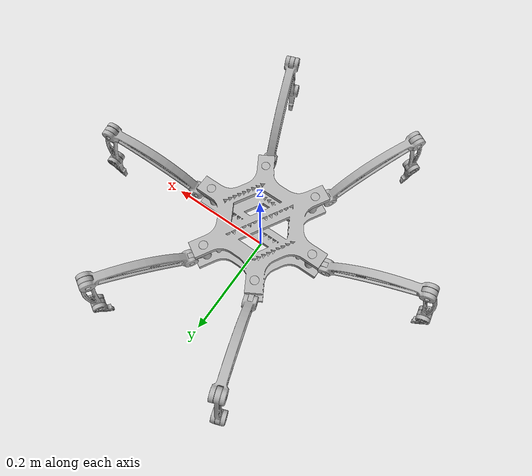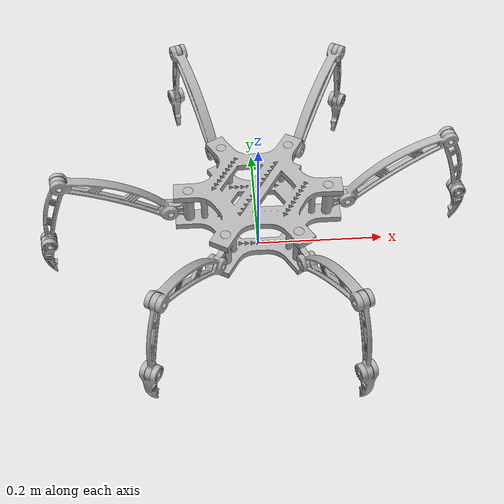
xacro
<?xml version="1.0" ?>
<robot name="spiderbot" xmlns:xacro="http://www.ros.org/wiki/xacro">

<xacro:include filename="$(find spiderbot_description)/urdf/materials.xacro" />
<xacro:include filename="$(find spiderbot_description)/urdf/spiderbot.trans" />
<xacro:include filename="$(find spiderbot_description)/urdf/spiderbot.gazebo" />
<link name="base_link">
  <inertial>
    <origin rpy="0 0 0" xyz="2.6809392292955512e-05 -4.643522955654412e-05 0.0923699999999998"/>
    <mass value="3.423316766776228"/>
    <inertia ixx="0.013718" ixy="-0.000137" ixz="8e-06" iyy="0.013876" iyz="5e-06" izz="0.022087"/>
  </inertial>
  <visual>
    <origin rpy="0 0 0" xyz="0 0 0"/>
    <geometry>
      <mesh filename="package://spiderbot_description/meshes/base_link.stl" scale="0.001 0.001 0.001"/>
    </geometry>
    <material name="silver"/>
  </visual>
  <collision>
    <origin rpy="0 0 0" xyz="0 0 0"/>
    <geometry>
      <mesh filename="package://spiderbot_description/meshes/base_link.stl" scale="0.001 0.001 0.001"/>
    </geometry>
  </collision>
</link>

<link name="L3_1">
  <inertial>
    <origin rpy="0 0 0" xyz="-0.005130608888203325 0.00023349383962689707 -0.016813261652497954"/>
    <mass value="0.08507758327600112"/>
    <inertia ixx="3.5e-05" ixy="0.0" ixz="-1e-06" iyy="3.5e-05" iyz="-1e-06" izz="6e-06"/>
  </inertial>
  <visual>
    <origin rpy="0 0 0" xyz="0.157328 0.281559 -0.067835"/>
    <geometry>
      <mesh filename="package://spiderbot_description/meshes/L3_1.stl" scale="0.001 0.001 0.001"/>
    </geometry>
    <material name="silver"/>
  </visual>
  <collision>
    <origin rpy="0 0 0" xyz="0.157328 0.281559 -0.067835"/>
    <geometry>
      <mesh filename="package://spiderbot_description/meshes/L3_1.stl" scale="0.001 0.001 0.001"/>
    </geometry>
  </collision>
</link>

<link name="L2_1">
  <inertial>
    <origin rpy="0 0 0" xyz="-0.01212597182277686 -0.01205985316858843 -0.056071782056924424"/>
    <mass value="0.10556026695885269"/>
    <inertia ixx="0.000244" ixy="-9e-06" ixz="-3e-05" iyy="0.000234" iyz="-5.2e-05" izz="2.2e-05"/>
  </inertial>
  <visual>
    <origin rpy="0 0 0" xyz="0.141772 0.254557 -0.183719"/>
    <geometry>
      <mesh filename="package://spiderbot_description/meshes/L2_1.stl" scale="0.001 0.001 0.001"/>
    </geometry>
    <material name="silver"/>
  </visual>
  <collision>
    <origin rpy="0 0 0" xyz="0.141772 0.254557 -0.183719"/>
    <geometry>
      <mesh filename="package://spiderbot_description/meshes/L2_1.stl" scale="0.001 0.001 0.001"/>
    </geometry>
  </collision>
</link>

<link name="L1_1">
  <inertial>
    <origin rpy="0 0 0" xyz="-0.040901984797283464 -0.0616602746095367 0.048404022481763107"/>
    <mass value="0.29510328391513424"/>
    <inertia ixx="0.00103" ixy="-0.000391" ixz="0.000264" iyy="0.000578" iyz="0.000458" izz="0.000923"/>
  </inertial>
  <visual>
    <origin rpy="0 0 0" xyz="0.064223 0.120238 -0.09237"/>
    <geometry>
      <mesh filename="package://spiderbot_description/meshes/L1_1.stl" scale="0.001 0.001 0.001"/>
    </geometry>
    <material name="silver"/>
  </visual>
  <collision>
    <origin rpy="0 0 0" xyz="0.064223 0.120238 -0.09237"/>
    <geometry>
      <mesh filename="package://spiderbot_description/meshes/L1_1.stl" scale="0.001 0.001 0.001"/>
    </geometry>
  </collision>
</link>

<link name="Hinge_1">
  <inertial>
    <origin rpy="0 0 0" xyz="-0.003170256289144309 -0.005491189080670353 -0.03379999999999492"/>
    <mass value="0.13570338096793705"/>
    <inertia ixx="5.6e-05" ixy="-8e-06" ixz="0.0" iyy="4.7e-05" iyz="0.0" izz="2.3e-05"/>
  </inertial>
  <visual>
    <origin rpy="0 0 0" xyz="0.053121 0.092008 -0.12617"/>
    <geometry>
      <mesh filename="package://spiderbot_description/meshes/Hinge_1.stl" scale="0.001 0.001 0.001"/>
    </geometry>
    <material name="silver"/>
  </visual>
  <collision>
    <origin rpy="0 0 0" xyz="0.053121 0.092008 -0.12617"/>
    <geometry>
      <mesh filename="package://spiderbot_description/meshes/Hinge_1.stl" scale="0.001 0.001 0.001"/>
    </geometry>
  </collision>
</link>

<link name="L3_2">
  <inertial>
    <origin rpy="0 0 0" xyz="-0.003440144629059616 -0.003767504367178931 -0.01681326165251376"/>
    <mass value="0.08507758327600112"/>
    <inertia ixx="3.5e-05" ixy="-0.0" ixz="1e-06" iyy="3.5e-05" iyz="-2e-06" izz="6e-06"/>
  </inertial>
  <visual>
    <origin rpy="0 0 0" xyz="-0.131314 0.293686 -0.067835"/>
    <geometry>
      <mesh filename="package://spiderbot_description/meshes/L3_2.stl" scale="0.001 0.001 0.001"/>
    </geometry>
    <material name="silver"/>
  </visual>
  <collision>
    <origin rpy="0 0 0" xyz="-0.131314 0.293686 -0.067835"/>
    <geometry>
      <mesh filename="package://spiderbot_description/meshes/L3_2.stl" scale="0.001 0.001 0.001"/>
    </geometry>
  </collision>
</link>

<link name="L2_2">
  <inertial>
    <origin rpy="0 0 0" xyz="0.001444614118033677 -0.017040204575403672 -0.05607178205692495"/>
    <mass value="0.10556026695885269"/>
    <inertia ixx="0.000247" ixy="7e-06" ixz="2.1e-05" iyy="0.000231" iyz="-5.7e-05" izz="2.2e-05"/>
  </inertial>
  <visual>
    <origin rpy="0 0 0" xyz="-0.120656 0.264404 -0.183719"/>
    <geometry>
      <mesh filename="package://spiderbot_description/meshes/L2_2.stl" scale="0.001 0.001 0.001"/>
    </geometry>
    <material name="silver"/>
  </visual>
  <collision>
    <origin rpy="0 0 0" xyz="-0.120656 0.264404 -0.183719"/>
    <geometry>
      <mesh filename="package://spiderbot_description/meshes/L2_2.stl" scale="0.001 0.001 0.001"/>
    </geometry>
  </collision>
</link>

<link name="L1_2">
  <inertial>
    <origin rpy="0 0 0" xyz="0.02094308953132311 -0.07096687628219654 0.048404022481762746"/>
    <mass value="0.29510328391513424"/>
    <inertia ixx="0.00115" ixy="0.00029" ixz="-0.000181" iyy="0.000458" iyz="0.000497" izz="0.000923"/>
  </inertial>
  <visual>
    <origin rpy="0 0 0" xyz="-0.06761 0.118659 -0.09237"/>
    <geometry>
      <mesh filename="package://spiderbot_description/meshes/L1_2.stl" scale="0.001 0.001 0.001"/>
    </geometry>
    <material name="silver"/>
  </visual>
  <collision>
    <origin rpy="0 0 0" xyz="-0.06761 0.118659 -0.09237"/>
    <geometry>
      <mesh filename="package://spiderbot_description/meshes/L1_2.stl" scale="0.001 0.001 0.001"/>
    </geometry>
  </collision>
</link>

<link name="Hinge_2">
  <inertial>
    <origin rpy="0 0 0" xyz="0.0021683546774397405 -0.005958383474925971 -0.033799999999994904"/>
    <mass value="0.13570338096793705"/>
    <inertia ixx="5.9e-05" ixy="6e-06" ixz="-0.0" iyy="4.4e-05" iyz="0.0" izz="2.3e-05"/>
  </inertial>
  <visual>
    <origin rpy="0 0 0" xyz="-0.053121 0.092008 -0.12617"/>
    <geometry>
      <mesh filename="package://spiderbot_description/meshes/Hinge_2.stl" scale="0.001 0.001 0.001"/>
    </geometry>
    <material name="silver"/>
  </visual>
  <collision>
    <origin rpy="0 0 0" xyz="-0.053121 0.092008 -0.12617"/>
    <geometry>
      <mesh filename="package://spiderbot_description/meshes/Hinge_2.stl" scale="0.001 0.001 0.001"/>
    </geometry>
  </collision>
</link>

<link name="L3_3">
  <inertial>
    <origin rpy="0 0 0" xyz="0.0031127057224516474 -0.004042714858644769 -0.016813261652514067"/>
    <mass value="0.08507758327600112"/>
    <inertia ixx="3.5e-05" ixy="0.0" ixz="2e-06" iyy="3.5e-05" iyz="0.0" izz="6e-06"/>
  </inertial>
  <visual>
    <origin rpy="0 0 0" xyz="-0.318434 -0.041985 -0.067835"/>
    <geometry>
      <mesh filename="package://spiderbot_description/meshes/L3_3.stl" scale="0.001 0.001 0.001"/>
    </geometry>
    <material name="silver"/>
  </visual>
  <collision>
    <origin rpy="0 0 0" xyz="-0.318434 -0.041985 -0.067835"/>
    <geometry>
      <mesh filename="package://spiderbot_description/meshes/L3_3.stl" scale="0.001 0.001 0.001"/>
    </geometry>
  </collision>
</link>

<link name="L2_3">
  <inertial>
    <origin rpy="0 0 0" xyz="0.017032110344417484 -0.0015372618699516435 -0.056071782056924785"/>
    <mass value="0.10556026695885269"/>
    <inertia ixx="0.000229" ixy="-4e-06" ixz="6e-05" iyy="0.000249" iyz="1.1e-05" izz="2.2e-05"/>
  </inertial>
  <visual>
    <origin rpy="0 0 0" xyz="-0.287746 -0.036574 -0.183719"/>
    <geometry>
      <mesh filename="package://spiderbot_description/meshes/L2_3.stl" scale="0.001 0.001 0.001"/>
    </geometry>
    <material name="silver"/>
  </visual>
  <collision>
    <origin rpy="0 0 0" xyz="-0.287746 -0.036574 -0.183719"/>
    <geometry>
      <mesh filename="package://spiderbot_description/meshes/L2_3.stl" scale="0.001 0.001 0.001"/>
    </geometry>
  </collision>
</link>

<link name="L1_3">
  <inertial>
    <origin rpy="0 0 0" xyz="0.07352524226292798 0.00830196120722726 0.04840402248176283"/>
    <mass value="0.29510328391513424"/>
    <inertia ixx="0.000379" ixy="-0.000154" ixz="-0.000521" iyy="0.001228" iyz="-9.2e-05" izz="0.000923"/>
  </inertial>
  <visual>
    <origin rpy="0 0 0" xyz="-0.135004 -0.009641 -0.09237"/>
    <geometry>
      <mesh filename="package://spiderbot_description/meshes/L1_3.stl" scale="0.001 0.001 0.001"/>
    </geometry>
    <material name="silver"/>
  </visual>
  <collision>
    <origin rpy="0 0 0" xyz="-0.135004 -0.009641 -0.09237"/>
    <geometry>
      <mesh filename="package://spiderbot_description/meshes/L1_3.stl" scale="0.001 0.001 0.001"/>
    </geometry>
  </collision>
</link>

<link name="Hinge_3">
  <inertial>
    <origin rpy="0 0 0" xyz="0.006245076169388228 0.0011010811208380588 -0.03379999999999492"/>
    <mass value="0.13570338096793705"/>
    <inertia ixx="4.3e-05" ixy="-3e-06" ixz="-0.0" iyy="6.1e-05" iyz="-0.0" izz="2.3e-05"/>
  </inertial>
  <visual>
    <origin rpy="0 0 0" xyz="-0.106241 -0.0 -0.12617"/>
    <geometry>
      <mesh filename="package://spiderbot_description/meshes/Hinge_3.stl" scale="0.001 0.001 0.001"/>
    </geometry>
    <material name="silver"/>
  </visual>
  <collision>
    <origin rpy="0 0 0" xyz="-0.106241 -0.0 -0.12617"/>
    <geometry>
      <mesh filename="package://spiderbot_description/meshes/Hinge_3.stl" scale="0.001 0.001 0.001"/>
    </geometry>
  </collision>
</link>

<link name="L3_4">
  <inertial>
    <origin rpy="0 0 0" xyz="0.00436039744111319 -0.0014903417654521522 -0.016955217756323367"/>
    <mass value="0.08507758327600112"/>
    <inertia ixx="3.5e-05" ixy="0.0" ixz="-0.0" iyy="3.5e-05" iyz="-1e-06" izz="6e-06"/>
  </inertial>
  <visual>
    <origin rpy="0 0 0" xyz="-0.152244 -0.272694 -0.06556"/>
    <geometry>
      <mesh filename="package://spiderbot_description/meshes/L3_4.stl" scale="0.001 0.001 0.001"/>
    </geometry>
    <material name="silver"/>
  </visual>
  <collision>
    <origin rpy="0 0 0" xyz="-0.152244 -0.272694 -0.06556"/>
    <geometry>
      <mesh filename="package://spiderbot_description/meshes/L3_4.stl" scale="0.001 0.001 0.001"/>
    </geometry>
  </collision>
</link>

<link name="L2_4">
  <inertial>
    <origin rpy="0 0 0" xyz="0.009651085584022723 0.007773224460114581 -0.05729707120023575"/>
    <mass value="0.10556026695885269"/>
    <inertia ixx="0.000247" ixy="-5e-06" ixz="2.1e-05" iyy="0.000241" iyz="3.6e-05" izz="1.3e-05"/>
  </inertial>
  <visual>
    <origin rpy="0 0 0" xyz="-0.141772 -0.254557 -0.183719"/>
    <geometry>
      <mesh filename="package://spiderbot_description/meshes/L2_4.stl" scale="0.001 0.001 0.001"/>
    </geometry>
    <material name="silver"/>
  </visual>
  <collision>
    <origin rpy="0 0 0" xyz="-0.141772 -0.254557 -0.183719"/>
    <geometry>
      <mesh filename="package://spiderbot_description/meshes/L2_4.stl" scale="0.001 0.001 0.001"/>
    </geometry>
  </collision>
</link>

<link name="L1_4">
  <inertial>
    <origin rpy="0 0 0" xyz="0.04090198479728327 0.06166027460953723 0.04840402248176297"/>
    <mass value="0.29510328391513424"/>
    <inertia ixx="0.00103" ixy="-0.000391" ixz="-0.000264" iyy="0.000578" iyz="-0.000458" izz="0.000923"/>
  </inertial>
  <visual>
    <origin rpy="0 0 0" xyz="-0.064223 -0.120238 -0.09237"/>
    <geometry>
      <mesh filename="package://spiderbot_description/meshes/L1_4.stl" scale="0.001 0.001 0.001"/>
    </geometry>
    <material name="silver"/>
  </visual>
  <collision>
    <origin rpy="0 0 0" xyz="-0.064223 -0.120238 -0.09237"/>
    <geometry>
      <mesh filename="package://spiderbot_description/meshes/L1_4.stl" scale="0.001 0.001 0.001"/>
    </geometry>
  </collision>
</link>

<link name="Hinge_4">
  <inertial>
    <origin rpy="0 0 0" xyz="0.0031702562891441147 0.005491189080670561 -0.033799999999994904"/>
    <mass value="0.13570338096793705"/>
    <inertia ixx="5.6e-05" ixy="-8e-06" ixz="-0.0" iyy="4.7e-05" iyz="-0.0" izz="2.3e-05"/>
  </inertial>
  <visual>
    <origin rpy="0 0 0" xyz="-0.053121 -0.092008 -0.12617"/>
    <geometry>
      <mesh filename="package://spiderbot_description/meshes/Hinge_4.stl" scale="0.001 0.001 0.001"/>
    </geometry>
    <material name="silver"/>
  </visual>
  <collision>
    <origin rpy="0 0 0" xyz="-0.053121 -0.092008 -0.12617"/>
    <geometry>
      <mesh filename="package://spiderbot_description/meshes/Hinge_4.stl" scale="0.001 0.001 0.001"/>
    </geometry>
  </collision>
</link>

<link name="L3_5">
  <inertial>
    <origin rpy="0 0 0" xyz="0.0034401446290586446 0.0037675043671788755 -0.016813261652513498"/>
    <mass value="0.08507758327600112"/>
    <inertia ixx="3.5e-05" ixy="-0.0" ixz="-1e-06" iyy="3.5e-05" iyz="2e-06" izz="6e-06"/>
  </inertial>
  <visual>
    <origin rpy="0 0 0" xyz="0.131314 -0.293686 -0.067835"/>
    <geometry>
      <mesh filename="package://spiderbot_description/meshes/L3_5.stl" scale="0.001 0.001 0.001"/>
    </geometry>
    <material name="silver"/>
  </visual>
  <collision>
    <origin rpy="0 0 0" xyz="0.131314 -0.293686 -0.067835"/>
    <geometry>
      <mesh filename="package://spiderbot_description/meshes/L3_5.stl" scale="0.001 0.001 0.001"/>
    </geometry>
  </collision>
</link>

<link name="L2_5">
  <inertial>
    <origin rpy="0 0 0" xyz="-0.0014446141180349398 0.017040204575403506 -0.05607178205692451"/>
    <mass value="0.10556026695885269"/>
    <inertia ixx="0.000247" ixy="7e-06" ixz="-2.1e-05" iyy="0.000231" iyz="5.7e-05" izz="2.2e-05"/>
  </inertial>
  <visual>
    <origin rpy="0 0 0" xyz="0.120656 -0.264404 -0.183719"/>
    <geometry>
      <mesh filename="package://spiderbot_description/meshes/L2_5.stl" scale="0.001 0.001 0.001"/>
    </geometry>
    <material name="silver"/>
  </visual>
  <collision>
    <origin rpy="0 0 0" xyz="0.120656 -0.264404 -0.183719"/>
    <geometry>
      <mesh filename="package://spiderbot_description/meshes/L2_5.stl" scale="0.001 0.001 0.001"/>
    </geometry>
  </collision>
</link>

<link name="L1_5">
  <inertial>
    <origin rpy="0 0 0" xyz="-0.020943089531323983 0.0709668762821961 0.048404022481762995"/>
    <mass value="0.29510328391513424"/>
    <inertia ixx="0.00115" ixy="0.00029" ixz="0.000181" iyy="0.000458" iyz="-0.000497" izz="0.000923"/>
  </inertial>
  <visual>
    <origin rpy="0 0 0" xyz="0.06761 -0.118659 -0.09237"/>
    <geometry>
      <mesh filename="package://spiderbot_description/meshes/L1_5.stl" scale="0.001 0.001 0.001"/>
    </geometry>
    <material name="silver"/>
  </visual>
  <collision>
    <origin rpy="0 0 0" xyz="0.06761 -0.118659 -0.09237"/>
    <geometry>
      <mesh filename="package://spiderbot_description/meshes/L1_5.stl" scale="0.001 0.001 0.001"/>
    </geometry>
  </collision>
</link>

<link name="Hinge_5">
  <inertial>
    <origin rpy="0 0 0" xyz="-0.0021683546774405107 0.005958383474925569 -0.033799999999994904"/>
    <mass value="0.13570338096793705"/>
    <inertia ixx="5.9e-05" ixy="6e-06" ixz="0.0" iyy="4.4e-05" iyz="-0.0" izz="2.3e-05"/>
  </inertial>
  <visual>
    <origin rpy="0 0 0" xyz="0.053121 -0.092008 -0.12617"/>
    <geometry>
      <mesh filename="package://spiderbot_description/meshes/Hinge_5.stl" scale="0.001 0.001 0.001"/>
    </geometry>
    <material name="silver"/>
  </visual>
  <collision>
    <origin rpy="0 0 0" xyz="0.053121 -0.092008 -0.12617"/>
    <geometry>
      <mesh filename="package://spiderbot_description/meshes/Hinge_5.stl" scale="0.001 0.001 0.001"/>
    </geometry>
  </collision>
</link>

<link name="L3_6">
  <inertial>
    <origin rpy="0 0 0" xyz="-0.0031127057224531463 0.004042714858644041 -0.016813261652512977"/>
    <mass value="0.08507758327600112"/>
    <inertia ixx="3.5e-05" ixy="0.0" ixz="-2e-06" iyy="3.5e-05" iyz="-0.0" izz="6e-06"/>
  </inertial>
  <visual>
    <origin rpy="0 0 0" xyz="0.318434 0.041985 -0.067835"/>
    <geometry>
      <mesh filename="package://spiderbot_description/meshes/L3_6.stl" scale="0.001 0.001 0.001"/>
    </geometry>
    <material name="silver"/>
  </visual>
  <collision>
    <origin rpy="0 0 0" xyz="0.318434 0.041985 -0.067835"/>
    <geometry>
      <mesh filename="package://spiderbot_description/meshes/L3_6.stl" scale="0.001 0.001 0.001"/>
    </geometry>
  </collision>
</link>

<link name="L2_6">
  <inertial>
    <origin rpy="0 0 0" xyz="-0.01703211034441726 0.0015372618699512272 -0.056071782056924147"/>
    <mass value="0.10556026695885269"/>
    <inertia ixx="0.000229" ixy="-4e-06" ixz="-6e-05" iyy="0.000249" iyz="-1.1e-05" izz="2.2e-05"/>
  </inertial>
  <visual>
    <origin rpy="0 0 0" xyz="0.287746 0.036574 -0.183719"/>
    <geometry>
      <mesh filename="package://spiderbot_description/meshes/L2_6.stl" scale="0.001 0.001 0.001"/>
    </geometry>
    <material name="silver"/>
  </visual>
  <collision>
    <origin rpy="0 0 0" xyz="0.287746 0.036574 -0.183719"/>
    <geometry>
      <mesh filename="package://spiderbot_description/meshes/L2_6.stl" scale="0.001 0.001 0.001"/>
    </geometry>
  </collision>
</link>

<link name="L1_6">
  <inertial>
    <origin rpy="0 0 0" xyz="-0.07352524226292795 -0.008301961207227784 0.048404022481762995"/>
    <mass value="0.29510328391513424"/>
    <inertia ixx="0.000379" ixy="-0.000154" ixz="0.000521" iyy="0.001228" iyz="9.2e-05" izz="0.000923"/>
  </inertial>
  <visual>
    <origin rpy="0 0 0" xyz="0.135004 0.009641 -0.09237"/>
    <geometry>
      <mesh filename="package://spiderbot_description/meshes/L1_6.stl" scale="0.001 0.001 0.001"/>
    </geometry>
    <material name="silver"/>
  </visual>
  <collision>
    <origin rpy="0 0 0" xyz="0.135004 0.009641 -0.09237"/>
    <geometry>
      <mesh filename="package://spiderbot_description/meshes/L1_6.stl" scale="0.001 0.001 0.001"/>
    </geometry>
  </collision>
</link>

<link name="Hinge_6">
  <inertial>
    <origin rpy="0 0 0" xyz="-0.006245076169388353 -0.001101081120838716 -0.033799999999994904"/>
    <mass value="0.13570338096793705"/>
    <inertia ixx="4.3e-05" ixy="-3e-06" ixz="0.0" iyy="6.1e-05" iyz="0.0" izz="2.3e-05"/>
  </inertial>
  <visual>
    <origin rpy="0 0 0" xyz="0.106241 0.0 -0.12617"/>
    <geometry>
      <mesh filename="package://spiderbot_description/meshes/Hinge_6.stl" scale="0.001 0.001 0.001"/>
    </geometry>
    <material name="silver"/>
  </visual>
  <collision>
    <origin rpy="0 0 0" xyz="0.106241 0.0 -0.12617"/>
    <geometry>
      <mesh filename="package://spiderbot_description/meshes/Hinge_6.stl" scale="0.001 0.001 0.001"/>
    </geometry>
  </collision>
</link>

<joint name="Rev28" type="continuous">
  <origin rpy="0 0 0" xyz="-0.015556 -0.027002 -0.115884"/>
  <parent link="L2_1"/>
  <child link="L3_1"/>
  <axis xyz="-0.866025 0.5 0.0"/>
</joint>

<joint name="Rev29" type="continuous">
  <origin rpy="0 0 0" xyz="-0.077549 -0.134319 0.091349"/>
  <parent link="L1_1"/>
  <child link="L2_1"/>
  <axis xyz="0.866025 -0.5 0.0"/>
</joint>

<joint name="Rev30" type="continuous">
  <origin rpy="0 0 0" xyz="-0.011102 -0.02823 -0.0338"/>
  <parent link="Hinge_1"/>
  <child link="L1_1"/>
  <axis xyz="0.866025 -0.5 0.0"/>
</joint>

<joint name="Rev31" type="continuous">
  <origin rpy="0 0 0" xyz="-0.053121 -0.092008 0.12617"/>
  <parent link="base_link"/>
  <child link="Hinge_1"/>
  <axis xyz="0.0 0.0 1.0"/>
</joint>

<joint name="Rev32" type="continuous">
  <origin rpy="0 0 0" xyz="0.010658 -0.029282 -0.115884"/>
  <parent link="L2_2"/>
  <child link="L3_2"/>
  <axis xyz="0.939693 0.34202 0.0"/>
</joint>

<joint name="Rev33" type="continuous">
  <origin rpy="0 0 0" xyz="0.053046 -0.145745 0.091349"/>
  <parent link="L1_2"/>
  <child link="L2_2"/>
  <axis xyz="0.939693 0.34202 0.0"/>
</joint>

<joint name="Rev34" type="continuous">
  <origin rpy="0 0 0" xyz="0.014489 -0.026651 -0.0338"/>
  <parent link="Hinge_2"/>
  <child link="L1_2"/>
  <axis xyz="0.939693 0.34202 0.0"/>
</joint>

<joint name="Rev35" type="continuous">
  <origin rpy="0 0 0" xyz="0.053121 -0.092008 0.12617"/>
  <parent link="base_link"/>
  <child link="Hinge_2"/>
  <axis xyz="0.0 0.0 1.0"/>
</joint>

<joint name="Rev36" type="continuous">
  <origin rpy="0 0 0" xyz="0.030688 0.005411 -0.115884"/>
  <parent link="L2_3"/>
  <child link="L3_3"/>
  <axis xyz="-0.173648 0.984808 0.0"/>
</joint>

<joint name="Rev37" type="continuous">
  <origin rpy="0 0 0" xyz="0.152742 0.026933 0.091349"/>
  <parent link="L1_3"/>
  <child link="L2_3"/>
  <axis xyz="-0.173648 0.984808 0.0"/>
</joint>

<joint name="Rev38" type="continuous">
  <origin rpy="0 0 0" xyz="0.028763 0.009641 -0.0338"/>
  <parent link="Hinge_3"/>
  <child link="L1_3"/>
  <axis xyz="-0.173648 0.984808 0.0"/>
</joint>

<joint name="Rev39" type="continuous">
  <origin rpy="0 0 0" xyz="0.106241 0.0 0.12617"/>
  <parent link="base_link"/>
  <child link="Hinge_3"/>
  <axis xyz="0.0 0.0 1.0"/>
</joint>

<joint name="Rev40" type="continuous">
  <origin rpy="0 0 0" xyz="0.010472 0.018137 -0.118159"/>
  <parent link="L2_4"/>
  <child link="L3_4"/>
  <axis xyz="-0.866025 0.5 0.0"/>
</joint>

<joint name="Rev41" type="continuous">
  <origin rpy="0 0 0" xyz="0.077549 0.134319 0.091349"/>
  <parent link="L1_4"/>
  <child link="L2_4"/>
  <axis xyz="-0.866025 0.5 0.0"/>
</joint>

<joint name="Rev42" type="continuous">
  <origin rpy="0 0 0" xyz="0.011102 0.02823 -0.0338"/>
  <parent link="Hinge_4"/>
  <child link="L1_4"/>
  <axis xyz="-0.866025 0.5 -0.0"/>
</joint>

<joint name="Rev43" type="continuous">
  <origin rpy="0 0 0" xyz="0.053121 0.092008 0.12617"/>
  <parent link="base_link"/>
  <child link="Hinge_4"/>
  <axis xyz="0.0 0.0 1.0"/>
</joint>

<joint name="Rev44" type="continuous">
  <origin rpy="0 0 0" xyz="-0.010658 0.029282 -0.115884"/>
  <parent link="L2_5"/>
  <child link="L3_5"/>
  <axis xyz="-0.939693 -0.34202 0.0"/>
</joint>

<joint name="Rev45" type="continuous">
  <origin rpy="0 0 0" xyz="-0.053046 0.145745 0.091349"/>
  <parent link="L1_5"/>
  <child link="L2_5"/>
  <axis xyz="-0.939693 -0.34202 0.0"/>
</joint>

<joint name="Rev46" type="continuous">
  <origin rpy="0 0 0" xyz="-0.014489 0.026651 -0.0338"/>
  <parent link="Hinge_5"/>
  <child link="L1_5"/>
  <axis xyz="-0.939693 -0.34202 -0.0"/>
</joint>

<joint name="Rev47" type="continuous">
  <origin rpy="0 0 0" xyz="-0.053121 0.092008 0.12617"/>
  <parent link="base_link"/>
  <child link="Hinge_5"/>
  <axis xyz="0.0 0.0 1.0"/>
</joint>

<joint name="Rev48" type="continuous">
  <origin rpy="0 0 0" xyz="-0.030688 -0.005411 -0.115884"/>
  <parent link="L2_6"/>
  <child link="L3_6"/>
  <axis xyz="0.173648 -0.984808 0.0"/>
</joint>

<joint name="Rev49" type="continuous">
  <origin rpy="0 0 0" xyz="-0.152742 -0.026933 0.091349"/>
  <parent link="L1_6"/>
  <child link="L2_6"/>
  <axis xyz="0.173648 -0.984808 0.0"/>
</joint>

<joint name="Rev50" type="continuous">
  <origin rpy="0 0 0" xyz="-0.028763 -0.009641 -0.0338"/>
  <parent link="Hinge_6"/>
  <child link="L1_6"/>
  <axis xyz="0.173648 -0.984808 -0.0"/>
</joint>

<joint name="Rev51" type="continuous">
  <origin rpy="0 0 0" xyz="-0.106241 0.0 0.12617"/>
  <parent link="base_link"/>
  <child link="Hinge_6"/>
  <axis xyz="0.0 0.0 1.0"/>
</joint>

</robot>

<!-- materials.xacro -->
<robot name="spiderbot" xmlns:xacro="http://www.ros.org/wiki/xacro" >

<material name="silver">
  <color rgba="0.700 0.700 0.700 1.000"/>
</material>

</robot>

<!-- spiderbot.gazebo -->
<robot name="spiderbot" xmlns:xacro="http://www.ros.org/wiki/xacro" >

<xacro:property name="body_color" value="Gazebo/Silver" />

<gazebo>
  <plugin filename="libgazebo_ros_control.so" name="control"/>
</gazebo>
<gazebo reference="base_link">
  <material>${body_color}</material>
  <mu1>0.2</mu1>
  <mu2>0.2</mu2>
  <selfCollide>true</selfCollide>
  <gravity>true</gravity>
</gazebo>

<gazebo reference="L3_1">
  <material>${body_color}</material>
  <mu1>0.2</mu1>
  <mu2>0.2</mu2>
  <selfCollide>true</selfCollide>
</gazebo>

<gazebo reference="L2_1">
  <material>${body_color}</material>
  <mu1>0.2</mu1>
  <mu2>0.2</mu2>
  <selfCollide>true</selfCollide>
</gazebo>

<gazebo reference="L1_1">
  <material>${body_color}</material>
  <mu1>0.2</mu1>
  <mu2>0.2</mu2>
  <selfCollide>true</selfCollide>
</gazebo>

<gazebo reference="Hinge_1">
  <material>${body_color}</material>
  <mu1>0.2</mu1>
  <mu2>0.2</mu2>
  <selfCollide>true</selfCollide>
</gazebo>

<gazebo reference="L3_2">
  <material>${body_color}</material>
  <mu1>0.2</mu1>
  <mu2>0.2</mu2>
  <selfCollide>true</selfCollide>
</gazebo>

<gazebo reference="L2_2">
  <material>${body_color}</material>
  <mu1>0.2</mu1>
  <mu2>0.2</mu2>
  <selfCollide>true</selfCollide>
</gazebo>

<gazebo reference="L1_2">
  <material>${body_color}</material>
  <mu1>0.2</mu1>
  <mu2>0.2</mu2>
  <selfCollide>true</selfCollide>
</gazebo>

<gazebo reference="Hinge_2">
  <material>${body_color}</material>
  <mu1>0.2</mu1>
  <mu2>0.2</mu2>
  <selfCollide>true</selfCollide>
</gazebo>

<gazebo reference="L3_3">
  <material>${body_color}</material>
  <mu1>0.2</mu1>
  <mu2>0.2</mu2>
  <selfCollide>true</selfCollide>
</gazebo>

<gazebo reference="L2_3">
  <material>${body_color}</material>
  <mu1>0.2</mu1>
  <mu2>0.2</mu2>
  <selfCollide>true</selfCollide>
</gazebo>

<gazebo reference="L1_3">
  <material>${body_color}</material>
  <mu1>0.2</mu1>
  <mu2>0.2</mu2>
  <selfCollide>true</selfCollide>
</gazebo>

<gazebo reference="Hinge_3">
  <material>${body_color}</material>
  <mu1>0.2</mu1>
  <mu2>0.2</mu2>
  <selfCollide>true</selfCollide>
</gazebo>

<gazebo reference="L3_4">
  <material>${body_color}</material>
  <mu1>0.2</mu1>
  <mu2>0.2</mu2>
  <selfCollide>true</selfCollide>
</gazebo>

<gazebo reference="L2_4">
  <material>${body_color}</material>
  <mu1>0.2</mu1>
  <mu2>0.2</mu2>
  <selfCollide>true</selfCollide>
</gazebo>

<gazebo reference="L1_4">
  <material>${body_color}</material>
  <mu1>0.2</mu1>
  <mu2>0.2</mu2>
  <selfCollide>true</selfCollide>
</gazebo>

<gazebo reference="Hinge_4">
  <material>${body_color}</material>
  <mu1>0.2</mu1>
  <mu2>0.2</mu2>
  <selfCollide>true</selfCollide>
</gazebo>

<gazebo reference="L3_5">
  <material>${body_color}</material>
  <mu1>0.2</mu1>
  <mu2>0.2</mu2>
  <selfCollide>true</selfCollide>
</gazebo>

<gazebo reference="L2_5">
  <material>${body_color}</material>
  <mu1>0.2</mu1>
  <mu2>0.2</mu2>
  <selfCollide>true</selfCollide>
</gazebo>

<gazebo reference="L1_5">
  <material>${body_color}</material>
  <mu1>0.2</mu1>
  <mu2>0.2</mu2>
  <selfCollide>true</selfCollide>
</gazebo>

<gazebo reference="Hinge_5">
  <material>${body_color}</material>
  <mu1>0.2</mu1>
  <mu2>0.2</mu2>
  <selfCollide>true</selfCollide>
</gazebo>

<gazebo reference="L3_6">
  <material>${body_color}</material>
  <mu1>0.2</mu1>
  <mu2>0.2</mu2>
  <selfCollide>true</selfCollide>
</gazebo>

<gazebo reference="L2_6">
  <material>${body_color}</material>
  <mu1>0.2</mu1>
  <mu2>0.2</mu2>
  <selfCollide>true</selfCollide>
</gazebo>

<gazebo reference="L1_6">
  <material>${body_color}</material>
  <mu1>0.2</mu1>
  <mu2>0.2</mu2>
  <selfCollide>true</selfCollide>
</gazebo>

<gazebo reference="Hinge_6">
  <material>${body_color}</material>
  <mu1>0.2</mu1>
  <mu2>0.2</mu2>
  <selfCollide>true</selfCollide>
</gazebo>

</robot>
